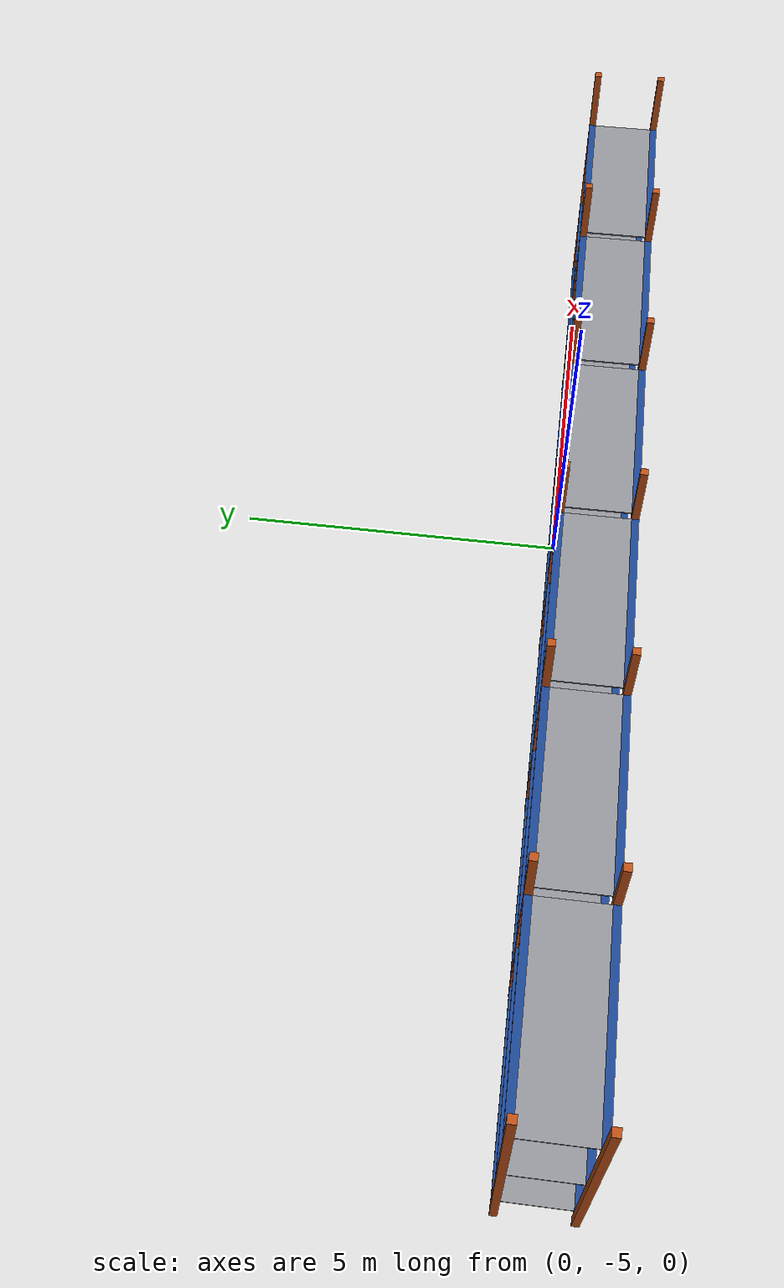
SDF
<sdf version="1.9">
 <world name="warehouse">
  <model name="rack_A">
   <static>true</static>
   <link name="frame">
    <visual name="up_0_f_v">
     <pose>-10 -5.95 2.25 0 0 0</pose>
     <geometry><box><size>0.1 0.1 4.5</size></box></geometry>
     <material>
      <ambient>0.36 0.15 0.04 1</ambient>
      <diffuse>0.72 0.3 0.08 1</diffuse>
      <specular>0.05 0.05 0.05 1</specular>
      <pbr><metal><metalness>0.0</metalness><roughness>0.9</roughness></metal></pbr>
     </material>
    </visual>
    <collision name="up_0_f_c">
     <pose>-10 -5.95 2.25 0 0 0</pose>
     <geometry><box><size>0.1 0.1 4.5</size></box></geometry>
    </collision>
    <visual name="up_0_b_v">
     <pose>-10 -4.95 2.25 0 0 0</pose>
     <geometry><box><size>0.1 0.1 4.5</size></box></geometry>
     <material>
      <ambient>0.36 0.15 0.04 1</ambient>
      <diffuse>0.72 0.3 0.08 1</diffuse>
      <specular>0.05 0.05 0.05 1</specular>
      <pbr><metal><metalness>0.0</metalness><roughness>0.9</roughness></metal></pbr>
     </material>
    </visual>
    <collision name="up_0_b_c">
     <pose>-10 -4.95 2.25 0 0 0</pose>
     <geometry><box><size>0.1 0.1 4.5</size></box></geometry>
    </collision>
    <visual name="up_1_f_v">
     <pose>-7.3 -5.95 2.25 0 0 0</pose>
     <geometry><box><size>0.1 0.1 4.5</size></box></geometry>
     <material>
      <ambient>0.36 0.15 0.04 1</ambient>
      <diffuse>0.72 0.3 0.08 1</diffuse>
      <specular>0.05 0.05 0.05 1</specular>
      <pbr><metal><metalness>0.0</metalness><roughness>0.9</roughness></metal></pbr>
     </material>
    </visual>
    <collision name="up_1_f_c">
     <pose>-7.3 -5.95 2.25 0 0 0</pose>
     <geometry><box><size>0.1 0.1 4.5</size></box></geometry>
    </collision>
    <visual name="up_1_b_v">
     <pose>-7.3 -4.95 2.25 0 0 0</pose>
     <geometry><box><size>0.1 0.1 4.5</size></box></geometry>
     <material>
      <ambient>0.36 0.15 0.04 1</ambient>
      <diffuse>0.72 0.3 0.08 1</diffuse>
      <specular>0.05 0.05 0.05 1</specular>
      <pbr><metal><metalness>0.0</metalness><roughness>0.9</roughness></metal></pbr>
     </material>
    </visual>
    <collision name="up_1_b_c">
     <pose>-7.3 -4.95 2.25 0 0 0</pose>
     <geometry><box><size>0.1 0.1 4.5</size></box></geometry>
    </collision>
    <visual name="up_2_f_v">
     <pose>-4.6 -5.95 2.25 0 0 0</pose>
     <geometry><box><size>0.1 0.1 4.5</size></box></geometry>
     <material>
      <ambient>0.36 0.15 0.04 1</ambient>
      <diffuse>0.72 0.3 0.08 1</diffuse>
      <specular>0.05 0.05 0.05 1</specular>
      <pbr><metal><metalness>0.0</metalness><roughness>0.9</roughness></metal></pbr>
     </material>
    </visual>
    <collision name="up_2_f_c">
     <pose>-4.6 -5.95 2.25 0 0 0</pose>
     <geometry><box><size>0.1 0.1 4.5</size></box></geometry>
    </collision>
    <visual name="up_2_b_v">
     <pose>-4.6 -4.95 2.25 0 0 0</pose>
     <geometry><box><size>0.1 0.1 4.5</size></box></geometry>
     <material>
      <ambient>0.36 0.15 0.04 1</ambient>
      <diffuse>0.72 0.3 0.08 1</diffuse>
      <specular>0.05 0.05 0.05 1</specular>
      <pbr><metal><metalness>0.0</metalness><roughness>0.9</roughness></metal></pbr>
     </material>
    </visual>
    <collision name="up_2_b_c">
     <pose>-4.6 -4.95 2.25 0 0 0</pose>
     <geometry><box><size>0.1 0.1 4.5</size></box></geometry>
    </collision>
    <visual name="up_3_f_v">
     <pose>-1.9 -5.95 2.25 0 0 0</pose>
     <geometry><box><size>0.1 0.1 4.5</size></box></geometry>
     <material>
      <ambient>0.36 0.15 0.04 1</ambient>
      <diffuse>0.72 0.3 0.08 1</diffuse>
      <specular>0.05 0.05 0.05 1</specular>
      <pbr><metal><metalness>0.0</metalness><roughness>0.9</roughness></metal></pbr>
     </material>
    </visual>
    <collision name="up_3_f_c">
     <pose>-1.9 -5.95 2.25 0 0 0</pose>
     <geometry><box><size>0.1 0.1 4.5</size></box></geometry>
    </collision>
    <visual name="up_3_b_v">
     <pose>-1.9 -4.95 2.25 0 0 0</pose>
     <geometry><box><size>0.1 0.1 4.5</size></box></geometry>
     <material>
      <ambient>0.36 0.15 0.04 1</ambient>
      <diffuse>0.72 0.3 0.08 1</diffuse>
      <specular>0.05 0.05 0.05 1</specular>
      <pbr><metal><metalness>0.0</metalness><roughness>0.9</roughness></metal></pbr>
     </material>
    </visual>
    <collision name="up_3_b_c">
     <pose>-1.9 -4.95 2.25 0 0 0</pose>
     <geometry><box><size>0.1 0.1 4.5</size></box></geometry>
    </collision>
    <visual name="up_4_f_v">
     <pose>0.8 -5.95 2.25 0 0 0</pose>
     <geometry><box><size>0.1 0.1 4.5</size></box></geometry>
     <material>
      <ambient>0.36 0.15 0.04 1</ambient>
      <diffuse>0.72 0.3 0.08 1</diffuse>
      <specular>0.05 0.05 0.05 1</specular>
      <pbr><metal><metalness>0.0</metalness><roughness>0.9</roughness></metal></pbr>
     </material>
    </visual>
    <collision name="up_4_f_c">
     <pose>0.8 -5.95 2.25 0 0 0</pose>
     <geometry><box><size>0.1 0.1 4.5</size></box></geometry>
    </collision>
    <visual name="up_4_b_v">
     <pose>0.8 -4.95 2.25 0 0 0</pose>
     <geometry><box><size>0.1 0.1 4.5</size></box></geometry>
     <material>
      <ambient>0.36 0.15 0.04 1</ambient>
      <diffuse>0.72 0.3 0.08 1</diffuse>
      <specular>0.05 0.05 0.05 1</specular>
      <pbr><metal><metalness>0.0</metalness><roughness>0.9</roughness></metal></pbr>
     </material>
    </visual>
    <collision name="up_4_b_c">
     <pose>0.8 -4.95 2.25 0 0 0</pose>
     <geometry><box><size>0.1 0.1 4.5</size></box></geometry>
    </collision>
    <visual name="up_5_f_v">
     <pose>3.5 -5.95 2.25 0 0 0</pose>
     <geometry><box><size>0.1 0.1 4.5</size></box></geometry>
     <material>
      <ambient>0.36 0.15 0.04 1</ambient>
      <diffuse>0.72 0.3 0.08 1</diffuse>
      <specular>0.05 0.05 0.05 1</specular>
      <pbr><metal><metalness>0.0</metalness><roughness>0.9</roughness></metal></pbr>
     </material>
    </visual>
    <collision name="up_5_f_c">
     <pose>3.5 -5.95 2.25 0 0 0</pose>
     <geometry><box><size>0.1 0.1 4.5</size></box></geometry>
    </collision>
    <visual name="up_5_b_v">
     <pose>3.5 -4.95 2.25 0 0 0</pose>
     <geometry><box><size>0.1 0.1 4.5</size></box></geometry>
     <material>
      <ambient>0.36 0.15 0.04 1</ambient>
      <diffuse>0.72 0.3 0.08 1</diffuse>
      <specular>0.05 0.05 0.05 1</specular>
      <pbr><metal><metalness>0.0</metalness><roughness>0.9</roughness></metal></pbr>
     </material>
    </visual>
    <collision name="up_5_b_c">
     <pose>3.5 -4.95 2.25 0 0 0</pose>
     <geometry><box><size>0.1 0.1 4.5</size></box></geometry>
    </collision>
    <visual name="up_6_f_v">
     <pose>6.2 -5.95 2.25 0 0 0</pose>
     <geometry><box><size>0.1 0.1 4.5</size></box></geometry>
     <material>
      <ambient>0.36 0.15 0.04 1</ambient>
      <diffuse>0.72 0.3 0.08 1</diffuse>
      <specular>0.05 0.05 0.05 1</specular>
      <pbr><metal><metalness>0.0</metalness><roughness>0.9</roughness></metal></pbr>
     </material>
    </visual>
    <collision name="up_6_f_c">
     <pose>6.2 -5.95 2.25 0 0 0</pose>
     <geometry><box><size>0.1 0.1 4.5</size></box></geometry>
    </collision>
    <visual name="up_6_b_v">
     <pose>6.2 -4.95 2.25 0 0 0</pose>
     <geometry><box><size>0.1 0.1 4.5</size></box></geometry>
     <material>
      <ambient>0.36 0.15 0.04 1</ambient>
      <diffuse>0.72 0.3 0.08 1</diffuse>
      <specular>0.05 0.05 0.05 1</specular>
      <pbr><metal><metalness>0.0</metalness><roughness>0.9</roughness></metal></pbr>
     </material>
    </visual>
    <collision name="up_6_b_c">
     <pose>6.2 -4.95 2.25 0 0 0</pose>
     <geometry><box><size>0.1 0.1 4.5</size></box></geometry>
    </collision>
    <visual name="beam_0_0_f_v">
     <pose>-8.65 -5.95 0.35 0 0 0</pose>
     <geometry><box><size>2.6 0.1 0.1</size></box></geometry>
     <material>
      <ambient>0.05 0.13 0.275 1</ambient>
      <diffuse>0.1 0.26 0.55 1</diffuse>
      <specular>0.05 0.05 0.05 1</specular>
      <pbr><metal><metalness>0.0</metalness><roughness>0.9</roughness></metal></pbr>
     </material>
    </visual>
    <collision name="beam_0_0_f_c">
     <pose>-8.65 -5.95 0.35 0 0 0</pose>
     <geometry><box><size>2.6 0.1 0.1</size></box></geometry>
    </collision>
    <visual name="beam_0_0_b_v">
     <pose>-8.65 -4.95 0.35 0 0 0</pose>
     <geometry><box><size>2.6 0.1 0.1</size></box></geometry>
     <material>
      <ambient>0.05 0.13 0.275 1</ambient>
      <diffuse>0.1 0.26 0.55 1</diffuse>
      <specular>0.05 0.05 0.05 1</specular>
      <pbr><metal><metalness>0.0</metalness><roughness>0.9</roughness></metal></pbr>
     </material>
    </visual>
    <collision name="beam_0_0_b_c">
     <pose>-8.65 -4.95 0.35 0 0 0</pose>
     <geometry><box><size>2.6 0.1 0.1</size></box></geometry>
    </collision>
    <visual name="deck_0_0_v">
     <pose>-8.65 -5.45 0.39 0 0 0</pose>
     <geometry><box><size>2.6 0.9 0.02</size></box></geometry>
     <material>
      <ambient>0.275 0.28 0.29 1</ambient>
      <diffuse>0.55 0.56 0.58 1</diffuse>
      <specular>0.05 0.05 0.05 1</specular>
      <pbr><metal><metalness>0.0</metalness><roughness>0.9</roughness></metal></pbr>
     </material>
    </visual>
    <collision name="deck_0_0_c">
     <pose>-8.65 -5.45 0.39 0 0 0</pose>
     <geometry><box><size>2.6 0.9 0.02</size></box></geometry>
    </collision>
    <visual name="beam_0_1_f_v">
     <pose>-5.95 -5.95 0.35 0 0 0</pose>
     <geometry><box><size>2.6 0.1 0.1</size></box></geometry>
     <material>
      <ambient>0.05 0.13 0.275 1</ambient>
      <diffuse>0.1 0.26 0.55 1</diffuse>
      <specular>0.05 0.05 0.05 1</specular>
      <pbr><metal><metalness>0.0</metalness><roughness>0.9</roughness></metal></pbr>
     </material>
    </visual>
    <collision name="beam_0_1_f_c">
     <pose>-5.95 -5.95 0.35 0 0 0</pose>
     <geometry><box><size>2.6 0.1 0.1</size></box></geometry>
    </collision>
    <visual name="beam_0_1_b_v">
     <pose>-5.95 -4.95 0.35 0 0 0</pose>
     <geometry><box><size>2.6 0.1 0.1</size></box></geometry>
     <material>
      <ambient>0.05 0.13 0.275 1</ambient>
      <diffuse>0.1 0.26 0.55 1</diffuse>
      <specular>0.05 0.05 0.05 1</specular>
      <pbr><metal><metalness>0.0</metalness><roughness>0.9</roughness></metal></pbr>
     </material>
    </visual>
    <collision name="beam_0_1_b_c">
     <pose>-5.95 -4.95 0.35 0 0 0</pose>
     <geometry><box><size>2.6 0.1 0.1</size></box></geometry>
    </collision>
    <visual name="deck_0_1_v">
     <pose>-5.95 -5.45 0.39 0 0 0</pose>
     <geometry><box><size>2.6 0.9 0.02</size></box></geometry>
     <material>
      <ambient>0.275 0.28 0.29 1</ambient>
      <diffuse>0.55 0.56 0.58 1</diffuse>
      <specular>0.05 0.05 0.05 1</specular>
      <pbr><metal><metalness>0.0</metalness><roughness>0.9</roughness></metal></pbr>
     </material>
    </visual>
    <collision name="deck_0_1_c">
     <pose>-5.95 -5.45 0.39 0 0 0</pose>
     <geometry><box><size>2.6 0.9 0.02</size></box></geometry>
    </collision>
    <visual name="beam_0_2_f_v">
     <pose>-3.25 -5.95 0.35 0 0 0</pose>
     <geometry><box><size>2.6 0.1 0.1</size></box></geometry>
     <material>
      <ambient>0.05 0.13 0.275 1</ambient>
      <diffuse>0.1 0.26 0.55 1</diffuse>
      <specular>0.05 0.05 0.05 1</specular>
      <pbr><metal><metalness>0.0</metalness><roughness>0.9</roughness></metal></pbr>
     </material>
    </visual>
    <collision name="beam_0_2_f_c">
     <pose>-3.25 -5.95 0.35 0 0 0</pose>
     <geometry><box><size>2.6 0.1 0.1</size></box></geometry>
    </collision>
    <visual name="beam_0_2_b_v">
     <pose>-3.25 -4.95 0.35 0 0 0</pose>
     <geometry><box><size>2.6 0.1 0.1</size></box></geometry>
     <material>
      <ambient>0.05 0.13 0.275 1</ambient>
      <diffuse>0.1 0.26 0.55 1</diffuse>
      <specular>0.05 0.05 0.05 1</specular>
      <pbr><metal><metalness>0.0</metalness><roughness>0.9</roughness></metal></pbr>
     </material>
    </visual>
    <collision name="beam_0_2_b_c">
     <pose>-3.25 -4.95 0.35 0 0 0</pose>
     <geometry><box><size>2.6 0.1 0.1</size></box></geometry>
    </collision>
    <visual name="deck_0_2_v">
     <pose>-3.25 -5.45 0.39 0 0 0</pose>
     <geometry><box><size>2.6 0.9 0.02</size></box></geometry>
     <material>
      <ambient>0.275 0.28 0.29 1</ambient>
      <diffuse>0.55 0.56 0.58 1</diffuse>
      <specular>0.05 0.05 0.05 1</specular>
      <pbr><metal><metalness>0.0</metalness><roughness>0.9</roughness></metal></pbr>
     </material>
    </visual>
    <collision name="deck_0_2_c">
     <pose>-3.25 -5.45 0.39 0 0 0</pose>
     <geometry><box><size>2.6 0.9 0.02</size></box></geometry>
    </collision>
    <visual name="beam_0_3_f_v">
     <pose>-0.55 -5.95 0.35 0 0 0</pose>
     <geometry><box><size>2.6 0.1 0.1</size></box></geometry>
     <material>
      <ambient>0.05 0.13 0.275 1</ambient>
      <diffuse>0.1 0.26 0.55 1</diffuse>
      <specular>0.05 0.05 0.05 1</specular>
      <pbr><metal><metalness>0.0</metalness><roughness>0.9</roughness></metal></pbr>
     </material>
    </visual>
    <collision name="beam_0_3_f_c">
     <pose>-0.55 -5.95 0.35 0 0 0</pose>
     <geometry><box><size>2.6 0.1 0.1</size></box></geometry>
    </collision>
    <visual name="beam_0_3_b_v">
     <pose>-0.55 -4.95 0.35 0 0 0</pose>
     <geometry><box><size>2.6 0.1 0.1</size></box></geometry>
     <material>
      <ambient>0.05 0.13 0.275 1</ambient>
      <diffuse>0.1 0.26 0.55 1</diffuse>
      <specular>0.05 0.05 0.05 1</specular>
      <pbr><metal><metalness>0.0</metalness><roughness>0.9</roughness></metal></pbr>
     </material>
    </visual>
    <collision name="beam_0_3_b_c">
     <pose>-0.55 -4.95 0.35 0 0 0</pose>
     <geometry><box><size>2.6 0.1 0.1</size></box></geometry>
    </collision>
    <visual name="deck_0_3_v">
     <pose>-0.55 -5.45 0.39 0 0 0</pose>
     <geometry><box><size>2.6 0.9 0.02</size></box></geometry>
     <material>
      <ambient>0.275 0.28 0.29 1</ambient>
      <diffuse>0.55 0.56 0.58 1</diffuse>
      <specular>0.05 0.05 0.05 1</specular>
      <pbr><metal><metalness>0.0</metalness><roughness>0.9</roughness></metal></pbr>
     </material>
    </visual>
    <collision name="deck_0_3_c">
     <pose>-0.55 -5.45 0.39 0 0 0</pose>
     <geometry><box><size>2.6 0.9 0.02</size></box></geometry>
    </collision>
    <visual name="beam_0_4_f_v">
     <pose>2.15 -5.95 0.35 0 0 0</pose>
     <geometry><box><size>2.6 0.1 0.1</size></box></geometry>
     <material>
      <ambient>0.05 0.13 0.275 1</ambient>
      <diffuse>0.1 0.26 0.55 1</diffuse>
      <specular>0.05 0.05 0.05 1</specular>
      <pbr><metal><metalness>0.0</metalness><roughness>0.9</roughness></metal></pbr>
     </material>
    </visual>
    <collision name="beam_0_4_f_c">
     <pose>2.15 -5.95 0.35 0 0 0</pose>
     <geometry><box><size>2.6 0.1 0.1</size></box></geometry>
    </collision>
    <visual name="beam_0_4_b_v">
     <pose>2.15 -4.95 0.35 0 0 0</pose>
     <geometry><box><size>2.6 0.1 0.1</size></box></geometry>
     <material>
      <ambient>0.05 0.13 0.275 1</ambient>
      <diffuse>0.1 0.26 0.55 1</diffuse>
      <specular>0.05 0.05 0.05 1</specular>
      <pbr><metal><metalness>0.0</metalness><roughness>0.9</roughness></metal></pbr>
     </material>
    </visual>
    <collision name="beam_0_4_b_c">
     <pose>2.15 -4.95 0.35 0 0 0</pose>
     <geometry><box><size>2.6 0.1 0.1</size></box></geometry>
    </collision>
    <visual name="deck_0_4_v">
     <pose>2.15 -5.45 0.39 0 0 0</pose>
     <geometry><box><size>2.6 0.9 0.02</size></box></geometry>
     <material>
      <ambient>0.275 0.28 0.29 1</ambient>
      <diffuse>0.55 0.56 0.58 1</diffuse>
      <specular>0.05 0.05 0.05 1</specular>
      <pbr><metal><metalness>0.0</metalness><roughness>0.9</roughness></metal></pbr>
     </material>
    </visual>
    <collision name="deck_0_4_c">
     <pose>2.15 -5.45 0.39 0 0 0</pose>
     <geometry><box><size>2.6 0.9 0.02</size></box></geometry>
    </collision>
    <visual name="beam_0_5_f_v">
     <pose>4.85 -5.95 0.35 0 0 0</pose>
     <geometry><box><size>2.6 0.1 0.1</size></box></geometry>
     <material>
      <ambient>0.05 0.13 0.275 1</ambient>
      <diffuse>0.1 0.26 0.55 1</diffuse>
      <specular>0.05 0.05 0.05 1</specular>
      <pbr><metal><metalness>0.0</metalness><roughness>0.9</roughness></metal></pbr>
     </material>
    </visual>
    <collision name="beam_0_5_f_c">
     <pose>4.85 -5.95 0.35 0 0 0</pose>
     <geometry><box><size>2.6 0.1 0.1</size></box></geometry>
    </collision>
    <visual name="beam_0_5_b_v">
     <pose>4.85 -4.95 0.35 0 0 0</pose>
     <geometry><box><size>2.6 0.1 0.1</size></box></geometry>
     <material>
      <ambient>0.05 0.13 0.275 1</ambient>
      <diffuse>0.1 0.26 0.55 1</diffuse>
      <specular>0.05 0.05 0.05 1</specular>
      <pbr><metal><metalness>0.0</metalness><roughness>0.9</roughness></metal></pbr>
     </material>
    </visual>
    <collision name="beam_0_5_b_c">
     <pose>4.85 -4.95 0.35 0 0 0</pose>
     <geometry><box><size>2.6 0.1 0.1</size></box></geometry>
    </collision>
    <visual name="deck_0_5_v">
     <pose>4.85 -5.45 0.39 0 0 0</pose>
     <geometry><box><size>2.6 0.9 0.02</size></box></geometry>
     <material>
      <ambient>0.275 0.28 0.29 1</ambient>
      <diffuse>0.55 0.56 0.58 1</diffuse>
      <specular>0.05 0.05 0.05 1</specular>
      <pbr><metal><metalness>0.0</metalness><roughness>0.9</roughness></metal></pbr>
     </material>
    </visual>
    <collision name="deck_0_5_c">
     <pose>4.85 -5.45 0.39 0 0 0</pose>
     <geometry><box><size>2.6 0.9 0.02</size></box></geometry>
    </collision>
    <visual name="beam_1_0_f_v">
     <pose>-8.65 -5.95 1.8 0 0 0</pose>
     <geometry><box><size>2.6 0.1 0.1</size></box></geometry>
     <material>
      <ambient>0.05 0.13 0.275 1</ambient>
      <diffuse>0.1 0.26 0.55 1</diffuse>
      <specular>0.05 0.05 0.05 1</specular>
      <pbr><metal><metalness>0.0</metalness><roughness>0.9</roughness></metal></pbr>
     </material>
    </visual>
    <collision name="beam_1_0_f_c">
     <pose>-8.65 -5.95 1.8 0 0 0</pose>
     <geometry><box><size>2.6 0.1 0.1</size></box></geometry>
    </collision>
    <visual name="beam_1_0_b_v">
     <pose>-8.65 -4.95 1.8 0 0 0</pose>
     <geometry><box><size>2.6 0.1 0.1</size></box></geometry>
     <material>
      <ambient>0.05 0.13 0.275 1</ambient>
      <diffuse>0.1 0.26 0.55 1</diffuse>
      <specular>0.05 0.05 0.05 1</specular>
      <pbr><metal><metalness>0.0</metalness><roughness>0.9</roughness></metal></pbr>
     </material>
    </visual>
    <collision name="beam_1_0_b_c">
     <pose>-8.65 -4.95 1.8 0 0 0</pose>
     <geometry><box><size>2.6 0.1 0.1</size></box></geometry>
    </collision>
    <visual name="deck_1_0_v">
     <pose>-8.65 -5.45 1.84 0 0 0</pose>
     <geometry><box><size>2.6 0.9 0.02</size></box></geometry>
     <material>
      <ambient>0.275 0.28 0.29 1</ambient>
      <diffuse>0.55 0.56 0.58 1</diffuse>
      <specular>0.05 0.05 0.05 1</specular>
      <pbr><metal><metalness>0.0</metalness><roughness>0.9</roughness></metal></pbr>
     </material>
    </visual>
    <collision name="deck_1_0_c">
     <pose>-8.65 -5.45 1.84 0 0 0</pose>
     <geometry><box><size>2.6 0.9 0.02</size></box></geometry>
    </collision>
    <visual name="beam_1_1_f_v">
     <pose>-5.95 -5.95 1.8 0 0 0</pose>
     <geometry><box><size>2.6 0.1 0.1</size></box></geometry>
     <material>
      <ambient>0.05 0.13 0.275 1</ambient>
      <diffuse>0.1 0.26 0.55 1</diffuse>
      <specular>0.05 0.05 0.05 1</specular>
      <pbr><metal><metalness>0.0</metalness><roughness>0.9</roughness></metal></pbr>
     </material>
    </visual>
    <collision name="beam_1_1_f_c">
     <pose>-5.95 -5.95 1.8 0 0 0</pose>
     <geometry><box><size>2.6 0.1 0.1</size></box></geometry>
    </collision>
    <visual name="beam_1_1_b_v">
     <pose>-5.95 -4.95 1.8 0 0 0</pose>
     <geometry><box><size>2.6 0.1 0.1</size></box></geometry>
     <material>
      <ambient>0.05 0.13 0.275 1</ambient>
      <diffuse>0.1 0.26 0.55 1</diffuse>
      <specular>0.05 0.05 0.05 1</specular>
      <pbr><metal><metalness>0.0</metalness><roughness>0.9</roughness></metal></pbr>
     </material>
    </visual>
    <collision name="beam_1_1_b_c">
     <pose>-5.95 -4.95 1.8 0 0 0</pose>
     <geometry><box><size>2.6 0.1 0.1</size></box></geometry>
    </collision>
    <visual name="deck_1_1_v">
     <pose>-5.95 -5.45 1.84 0 0 0</pose>
     <geometry><box><size>2.6 0.9 0.02</size></box></geometry>
     <material>
      <ambient>0.275 0.28 0.29 1</ambient>
      <diffuse>0.55 0.56 0.58 1</diffuse>
      <specular>0.05 0.05 0.05 1</specular>
      <pbr><metal><metalness>0.0</metalness><roughness>0.9</roughness></metal></pbr>
     </material>
    </visual>
    <collision name="deck_1_1_c">
     <pose>-5.95 -5.45 1.84 0 0 0</pose>
     <geometry><box><size>2.6 0.9 0.02</size></box></geometry>
    </collision>
    <visual name="beam_1_2_f_v">
     <pose>-3.25 -5.95 1.8 0 0 0</pose>
     <geometry><box><size>2.6 0.1 0.1</size></box></geometry>
     <material>
      <ambient>0.05 0.13 0.275 1</ambient>
      <diffuse>0.1 0.26 0.55 1</diffuse>
      <specular>0.05 0.05 0.05 1</specular>
      <pbr><metal><metalness>0.0</metalness><roughness>0.9</roughness></metal></pbr>
     </material>
    </visual>
    <collision name="beam_1_2_f_c">
     <pose>-3.25 -5.95 1.8 0 0 0</pose>
     <geometry><box><size>2.6 0.1 0.1</size></box></geometry>
    </collision>
    <visual name="beam_1_2_b_v">
     <pose>-3.25 -4.95 1.8 0 0 0</pose>
     <geometry><box><size>2.6 0.1 0.1</size></box></geometry>
     <material>
      <ambient>0.05 0.13 0.275 1</ambient>
      <diffuse>0.1 0.26 0.55 1</diffuse>
      <specular>0.05 0.05 0.05 1</specular>
      <pbr><metal><metalness>0.0</metalness><roughness>0.9</roughness></metal></pbr>
     </material>
    </visual>
    <collision name="beam_1_2_b_c">
     <pose>-3.25 -4.95 1.8 0 0 0</pose>
     <geometry><box><size>2.6 0.1 0.1</size></box></geometry>
    </collision>
    <visual name="deck_1_2_v">
     <pose>-3.25 -5.45 1.84 0 0 0</pose>
     <geometry><box><size>2.6 0.9 0.02</size></box></geometry>
     <material>
      <ambient>0.275 0.28 0.29 1</ambient>
      <diffuse>0.55 0.56 0.58 1</diffuse>
      <specular>0.05 0.05 0.05 1</specular>
      <pbr><metal><metalness>0.0</metalness><roughness>0.9</roughness></metal></pbr>
     </material>
    </visual>
    <collision name="deck_1_2_c">
     <pose>-3.25 -5.45 1.84 0 0 0</pose>
     <geometry><box><size>2.6 0.9 0.02</size></box></geometry>
    </collision>
    <visual name="beam_1_3_f_v">
     <pose>-0.55 -5.95 1.8 0 0 0</pose>
     <geometry><box><size>2.6 0.1 0.1</size></box></geometry>
     <material>
      <ambient>0.05 0.13 0.275 1</ambient>
      <diffuse>0.1 0.26 0.55 1</diffuse>
      <specular>0.05 0.05 0.05 1</specular>
      <pbr><metal><metalness>0.0</metalness><roughness>0.9</roughness></metal></pbr>
     </material>
    </visual>
    <collision name="beam_1_3_f_c">
     <pose>-0.55 -5.95 1.8 0 0 0</pose>
     <geometry><box><size>2.6 0.1 0.1</size></box></geometry>
    </collision>
    <visual name="beam_1_3_b_v">
     <pose>-0.55 -4.95 1.8 0 0 0</pose>
     <geometry><box><size>2.6 0.1 0.1</size></box></geometry>
     <material>
      <ambient>0.05 0.13 0.275 1</ambient>
      <diffuse>0.1 0.26 0.55 1</diffuse>
      <specular>0.05 0.05 0.05 1</specular>
      <pbr><metal><metalness>0.0</metalness><roughness>0.9</roughness></metal></pbr>
     </material>
    </visual>
    <collision name="beam_1_3_b_c">
     <pose>-0.55 -4.95 1.8 0 0 0</pose>
     <geometry><box><size>2.6 0.1 0.1</size></box></geometry>
    </collision>
    <visual name="deck_1_3_v">
     <pose>-0.55 -5.45 1.84 0 0 0</pose>
     <geometry><box><size>2.6 0.9 0.02</size></box></geometry>
     <material>
      <ambient>0.275 0.28 0.29 1</ambient>
      <diffuse>0.55 0.56 0.58 1</diffuse>
      <specular>0.05 0.05 0.05 1</specular>
      <pbr><metal><metalness>0.0</metalness><roughness>0.9</roughness></metal></pbr>
     </material>
    </visual>
    <collision name="deck_1_3_c">
     <pose>-0.55 -5.45 1.84 0 0 0</pose>
     <geometry><box><size>2.6 0.9 0.02</size></box></geometry>
    </collision>
    <visual name="beam_1_4_f_v">
     <pose>2.15 -5.95 1.8 0 0 0</pose>
     <geometry><box><size>2.6 0.1 0.1</size></box></geometry>
     <material>
      <ambient>0.05 0.13 0.275 1</ambient>
      <diffuse>0.1 0.26 0.55 1</diffuse>
      <specular>0.05 0.05 0.05 1</specular>
      <pbr><metal><metalness>0.0</metalness><roughness>0.9</roughness></metal></pbr>
     </material>
    </visual>
    <collision name="beam_1_4_f_c">
     <pose>2.15 -5.95 1.8 0 0 0</pose>
     <geometry><box><size>2.6 0.1 0.1</size></box></geometry>
    </collision>
    <visual name="beam_1_4_b_v">
     <pose>2.15 -4.95 1.8 0 0 0</pose>
     <geometry><box><size>2.6 0.1 0.1</size></box></geometry>
     <material>
      <ambient>0.05 0.13 0.275 1</ambient>
      <diffuse>0.1 0.26 0.55 1</diffuse>
      <specular>0.05 0.05 0.05 1</specular>
      <pbr><metal><metalness>0.0</metalness><roughness>0.9</roughness></metal></pbr>
     </material>
    </visual>
    <collision name="beam_1_4_b_c">
     <pose>2.15 -4.95 1.8 0 0 0</pose>
     <geometry><box><size>2.6 0.1 0.1</size></box></geometry>
    </collision>
    <visual name="deck_1_4_v">
     <pose>2.15 -5.45 1.84 0 0 0</pose>
     <geometry><box><size>2.6 0.9 0.02</size></box></geometry>
     <material>
      <ambient>0.275 0.28 0.29 1</ambient>
      <diffuse>0.55 0.56 0.58 1</diffuse>
      <specular>0.05 0.05 0.05 1</specular>
      <pbr><metal><metalness>0.0</metalness><roughness>0.9</roughness></metal></pbr>
     </material>
    </visual>
    <collision name="deck_1_4_c">
     <pose>2.15 -5.45 1.84 0 0 0</pose>
     <geometry><box><size>2.6 0.9 0.02</size></box></geometry>
    </collision>
    <visual name="beam_1_5_f_v">
     <pose>4.85 -5.95 1.8 0 0 0</pose>
     <geometry><box><size>2.6 0.1 0.1</size></box></geometry>
     <material>
      <ambient>0.05 0.13 0.275 1</ambient>
      <diffuse>0.1 0.26 0.55 1</diffuse>
      <specular>0.05 0.05 0.05 1</specular>
      <pbr><metal><metalness>0.0</metalness><roughness>0.9</roughness></metal></pbr>
     </material>
    </visual>
    <collision name="beam_1_5_f_c">
     <pose>4.85 -5.95 1.8 0 0 0</pose>
     <geometry><box><size>2.6 0.1 0.1</size></box></geometry>
    </collision>
    <visual name="beam_1_5_b_v">
     <pose>4.85 -4.95 1.8 0 0 0</pose>
     <geometry><box><size>2.6 0.1 0.1</size></box></geometry>
     <material>
      <ambient>0.05 0.13 0.275 1</ambient>
      <diffuse>0.1 0.26 0.55 1</diffuse>
      <specular>0.05 0.05 0.05 1</specular>
      <pbr><metal><metalness>0.0</metalness><roughness>0.9</roughness></metal></pbr>
     </material>
    </visual>
    <collision name="beam_1_5_b_c">
     <pose>4.85 -4.95 1.8 0 0 0</pose>
     <geometry><box><size>2.6 0.1 0.1</size></box></geometry>
    </collision>
    <visual name="deck_1_5_v">
     <pose>4.85 -5.45 1.84 0 0 0</pose>
     <geometry><box><size>2.6 0.9 0.02</size></box></geometry>
     <material>
      <ambient>0.275 0.28 0.29 1</ambient>
      <diffuse>0.55 0.56 0.58 1</diffuse>
      <specular>0.05 0.05 0.05 1</specular>
      <pbr><metal><metalness>0.0</metalness><roughness>0.9</roughness></metal></pbr>
     </material>
    </visual>
    <collision name="deck_1_5_c">
     <pose>4.85 -5.45 1.84 0 0 0</pose>
     <geometry><box><size>2.6 0.9 0.02</size></box></geometry>
    </collision>
    <visual name="beam_2_0_f_v">
     <pose>-8.65 -5.95 3.5 0 0 0</pose>
     <geometry><box><size>2.6 0.1 0.1</size></box></geometry>
     <material>
      <ambient>0.05 0.13 0.275 1</ambient>
      <diffuse>0.1 0.26 0.55 1</diffuse>
      <specular>0.05 0.05 0.05 1</specular>
      <pbr><metal><metalness>0.0</metalness><roughness>0.9</roughness></metal></pbr>
     </material>
    </visual>
    <collision name="beam_2_0_f_c">
     <pose>-8.65 -5.95 3.5 0 0 0</pose>
     <geometry><box><size>2.6 0.1 0.1</size></box></geometry>
    </collision>
    <visual name="beam_2_0_b_v">
     <pose>-8.65 -4.95 3.5 0 0 0</pose>
     <geometry><box><size>2.6 0.1 0.1</size></box></geometry>
     <material>
      <ambient>0.05 0.13 0.275 1</ambient>
      <diffuse>0.1 0.26 0.55 1</diffuse>
      <specular>0.05 0.05 0.05 1</specular>
      <pbr><metal><metalness>0.0</metalness><roughness>0.9</roughness></metal></pbr>
     </material>
    </visual>
    <collision name="beam_2_0_b_c">
     <pose>-8.65 -4.95 3.5 0 0 0</pose>
     <geometry><box><size>2.6 0.1 0.1</size></box></geometry>
    </collision>
    <visual name="deck_2_0_v">
     <pose>-8.65 -5.45 3.54 0 0 0</pose>
     <geometry><box><size>2.6 0.9 0.02</size></box></geometry>
     <material>
      <ambient>0.275 0.28 0.29 1</ambient>
      <diffuse>0.55 0.56 0.58 1</diffuse>
      <specular>0.05 0.05 0.05 1</specular>
      <pbr><metal><metalness>0.0</metalness><roughness>0.9</roughness></metal></pbr>
     </material>
    </visual>
    <collision name="deck_2_0_c">
     <pose>-8.65 -5.45 3.54 0 0 0</pose>
     <geometry><box><size>2.6 0.9 0.02</size></box></geometry>
    </collision>
    <visual name="beam_2_1_f_v">
     <pose>-5.95 -5.95 3.5 0 0 0</pose>
     <geometry><box><size>2.6 0.1 0.1</size></box></geometry>
     <material>
      <ambient>0.05 0.13 0.275 1</ambient>
      <diffuse>0.1 0.26 0.55 1</diffuse>
      <specular>0.05 0.05 0.05 1</specular>
      <pbr><metal><metalness>0.0</metalness><roughness>0.9</roughness></metal></pbr>
     </material>
    </visual>
    <collision name="beam_2_1_f_c">
     <pose>-5.95 -5.95 3.5 0 0 0</pose>
     <geometry><box><size>2.6 0.1 0.1</size></box></geometry>
    </collision>
    <visual name="beam_2_1_b_v">
     <pose>-5.95 -4.95 3.5 0 0 0</pose>
     <geometry><box><size>2.6 0.1 0.1</size></box></geometry>
     <material>
      <ambient>0.05 0.13 0.275 1</ambient>
      <diffuse>0.1 0.26 0.55 1</diffuse>
      <specular>0.05 0.05 0.05 1</specular>
      <pbr><metal><metalness>0.0</metalness><roughness>0.9</roughness></metal></pbr>
     </material>
    </visual>
    <collision name="beam_2_1_b_c">
     <pose>-5.95 -4.95 3.5 0 0 0</pose>
     <geometry><box><size>2.6 0.1 0.1</size></box></geometry>
    </collision>
    <visual name="deck_2_1_v">
     <pose>-5.95 -5.45 3.54 0 0 0</pose>
     <geometry><box><size>2.6 0.9 0.02</size></box></geometry>
     <material>
      <ambient>0.275 0.28 0.29 1</ambient>
      <diffuse>0.55 0.56 0.58 1</diffuse>
      <specular>0.05 0.05 0.05 1</specular>
      <pbr><metal><metalness>0.0</metalness><roughness>0.9</roughness></metal></pbr>
     </material>
    </visual>
    <collision name="deck_2_1_c">
     <pose>-5.95 -5.45 3.54 0 0 0</pose>
     <geometry><box><size>2.6 0.9 0.02</size></box></geometry>
    </collision>
    <visual name="beam_2_2_f_v">
     <pose>-3.25 -5.95 3.5 0 0 0</pose>
     <geometry><box><size>2.6 0.1 0.1</size></box></geometry>
     <material>
      <ambient>0.05 0.13 0.275 1</ambient>
      <diffuse>0.1 0.26 0.55 1</diffuse>
      <specular>0.05 0.05 0.05 1</specular>
      <pbr><metal><metalness>0.0</metalness><roughness>0.9</roughness></metal></pbr>
     </material>
    </visual>
    <collision name="beam_2_2_f_c">
     <pose>-3.25 -5.95 3.5 0 0 0</pose>
     <geometry><box><size>2.6 0.1 0.1</size></box></geometry>
    </collision>
    <visual name="beam_2_2_b_v">
     <pose>-3.25 -4.95 3.5 0 0 0</pose>
     <geometry><box><size>2.6 0.1 0.1</size></box></geometry>
     <material>
      <ambient>0.05 0.13 0.275 1</ambient>
      <diffuse>0.1 0.26 0.55 1</diffuse>
      <specular>0.05 0.05 0.05 1</specular>
      <pbr><metal><metalness>0.0</metalness><roughness>0.9</roughness></metal></pbr>
     </material>
    </visual>
    <collision name="beam_2_2_b_c">
     <pose>-3.25 -4.95 3.5 0 0 0</pose>
     <geometry><box><size>2.6 0.1 0.1</size></box></geometry>
    </collision>
    <visual name="deck_2_2_v">
     <pose>-3.25 -5.45 3.54 0 0 0</pose>
     <geometry><box><size>2.6 0.9 0.02</size></box></geometry>
     <material>
      <ambient>0.275 0.28 0.29 1</ambient>
      <diffuse>0.55 0.56 0.58 1</diffuse>
      <specular>0.05 0.05 0.05 1</specular>
      <pbr><metal><metalness>0.0</metalness><roughness>0.9</roughness></metal></pbr>
     </material>
    </visual>
    <collision name="deck_2_2_c">
     <pose>-3.25 -5.45 3.54 0 0 0</pose>
     <geometry><box><size>2.6 0.9 0.02</size></box></geometry>
    </collision>
    <visual name="beam_2_3_f_v">
     <pose>-0.55 -5.95 3.5 0 0 0</pose>
     <geometry><box><size>2.6 0.1 0.1</size></box></geometry>
     <material>
      <ambient>0.05 0.13 0.275 1</ambient>
      <diffuse>0.1 0.26 0.55 1</diffuse>
      <specular>0.05 0.05 0.05 1</specular>
      <pbr><metal><metalness>0.0</metalness><roughness>0.9</roughness></metal></pbr>
     </material>
    </visual>
    <collision name="beam_2_3_f_c">
     <pose>-0.55 -5.95 3.5 0 0 0</pose>
     <geometry><box><size>2.6 0.1 0.1</size></box></geometry>
    </collision>
    <visual name="beam_2_3_b_v">
     <pose>-0.55 -4.95 3.5 0 0 0</pose>
     <geometry><box><size>2.6 0.1 0.1</size></box></geometry>
     <material>
      <ambient>0.05 0.13 0.275 1</ambient>
      <diffuse>0.1 0.26 0.55 1</diffuse>
      <specular>0.05 0.05 0.05 1</specular>
      <pbr><metal><metalness>0.0</metalness><roughness>0.9</roughness></metal></pbr>
     </material>
    </visual>
    <collision name="beam_2_3_b_c">
     <pose>-0.55 -4.95 3.5 0 0 0</pose>
     <geometry><box><size>2.6 0.1 0.1</size></box></geometry>
    </collision>
    <visual name="deck_2_3_v">
     <pose>-0.55 -5.45 3.54 0 0 0</pose>
     <geometry><box><size>2.6 0.9 0.02</size></box></geometry>
     <material>
      <ambient>0.275 0.28 0.29 1</ambient>
      <diffuse>0.55 0.56 0.58 1</diffuse>
      <specular>0.05 0.05 0.05 1</specular>
      <pbr><metal><metalness>0.0</metalness><roughness>0.9</roughness></metal></pbr>
     </material>
    </visual>
    <collision name="deck_2_3_c">
     <pose>-0.55 -5.45 3.54 0 0 0</pose>
     <geometry><box><size>2.6 0.9 0.02</size></box></geometry>
    </collision>
    <visual name="beam_2_4_f_v">
     <pose>2.15 -5.95 3.5 0 0 0</pose>
     <geometry><box><size>2.6 0.1 0.1</size></box></geometry>
     <material>
      <ambient>0.05 0.13 0.275 1</ambient>
      <diffuse>0.1 0.26 0.55 1</diffuse>
      <specular>0.05 0.05 0.05 1</specular>
      <pbr><metal><metalness>0.0</metalness><roughness>0.9</roughness></metal></pbr>
     </material>
    </visual>
    <collision name="beam_2_4_f_c">
     <pose>2.15 -5.95 3.5 0 0 0</pose>
     <geometry><box><size>2.6 0.1 0.1</size></box></geometry>
    </collision>
    <visual name="beam_2_4_b_v">
     <pose>2.15 -4.95 3.5 0 0 0</pose>
     <geometry><box><size>2.6 0.1 0.1</size></box></geometry>
     <material>
      <ambient>0.05 0.13 0.275 1</ambient>
      <diffuse>0.1 0.26 0.55 1</diffuse>
      <specular>0.05 0.05 0.05 1</specular>
      <pbr><metal><metalness>0.0</metalness><roughness>0.9</roughness></metal></pbr>
     </material>
    </visual>
    <collision name="beam_2_4_b_c">
     <pose>2.15 -4.95 3.5 0 0 0</pose>
     <geometry><box><size>2.6 0.1 0.1</size></box></geometry>
    </collision>
    <visual name="deck_2_4_v">
     <pose>2.15 -5.45 3.54 0 0 0</pose>
     <geometry><box><size>2.6 0.9 0.02</size></box></geometry>
     <material>
      <ambient>0.275 0.28 0.29 1</ambient>
      <diffuse>0.55 0.56 0.58 1</diffuse>
      <specular>0.05 0.05 0.05 1</specular>
      <pbr><metal><metalness>0.0</metalness><roughness>0.9</roughness></metal></pbr>
     </material>
    </visual>
    <collision name="deck_2_4_c">
     <pose>2.15 -5.45 3.54 0 0 0</pose>
     <geometry><box><size>2.6 0.9 0.02</size></box></geometry>
    </collision>
    <visual name="beam_2_5_f_v">
     <pose>4.85 -5.95 3.5 0 0 0</pose>
     <geometry><box><size>2.6 0.1 0.1</size></box></geometry>
     <material>
      <ambient>0.05 0.13 0.275 1</ambient>
      <diffuse>0.1 0.26 0.55 1</diffuse>
      <specular>0.05 0.05 0.05 1</specular>
      <pbr><metal><metalness>0.0</metalness><roughness>0.9</roughness></metal></pbr>
     </material>
    </visual>
    <collision name="beam_2_5_f_c">
     <pose>4.85 -5.95 3.5 0 0 0</pose>
     <geometry><box><size>2.6 0.1 0.1</size></box></geometry>
    </collision>
    <visual name="beam_2_5_b_v">
     <pose>4.85 -4.95 3.5 0 0 0</pose>
     <geometry><box><size>2.6 0.1 0.1</size></box></geometry>
     <material>
      <ambient>0.05 0.13 0.275 1</ambient>
      <diffuse>0.1 0.26 0.55 1</diffuse>
      <specular>0.05 0.05 0.05 1</specular>
      <pbr><metal><metalness>0.0</metalness><roughness>0.9</roughness></metal></pbr>
     </material>
    </visual>
    <collision name="beam_2_5_b_c">
     <pose>4.85 -4.95 3.5 0 0 0</pose>
     <geometry><box><size>2.6 0.1 0.1</size></box></geometry>
    </collision>
    <visual name="deck_2_5_v">
     <pose>4.85 -5.45 3.54 0 0 0</pose>
     <geometry><box><size>2.6 0.9 0.02</size></box></geometry>
     <material>
      <ambient>0.275 0.28 0.29 1</ambient>
      <diffuse>0.55 0.56 0.58 1</diffuse>
      <specular>0.05 0.05 0.05 1</specular>
      <pbr><metal><metalness>0.0</metalness><roughness>0.9</roughness></metal></pbr>
     </material>
    </visual>
    <collision name="deck_2_5_c">
     <pose>4.85 -5.45 3.54 0 0 0</pose>
     <geometry><box><size>2.6 0.9 0.02</size></box></geometry>
    </collision>
   </link>
  </model>
 </world>
</sdf>
